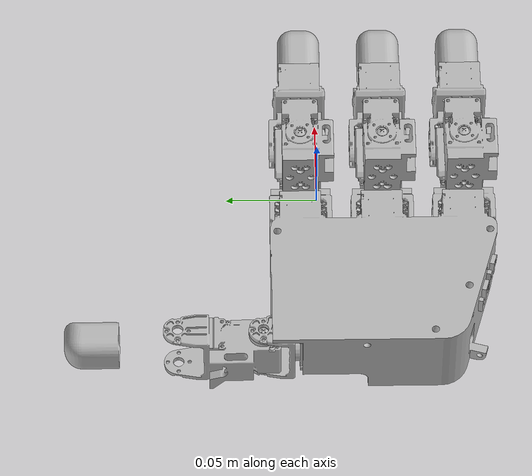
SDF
<sdf version='1.9'>
  <model name='leap_hand_right'>
    <link name='palm_lower'>
      <inertial>
        <pose>0 0 0 0 0 0</pose>
        <mass>0.23699999999999999</mass>
        <inertia>
          <ixx>0.000354094</ixx>
          <ixy>-1.1930000000000001e-06</ixy>
          <ixz>-2.4449999999999999e-06</ixz>
          <iyy>0.00026091500000000002</iyy>
          <iyz>-2.9050000000000001e-06</iyz>
          <izz>0.00052925699999999999</izz>
        </inertia>
      </inertial>
      <collision name='palm_lower_collision'>
        <pose>-0.008999999999999999 0.008 -0.011 0 0 0</pose>
        <geometry>
          <box>
            <size>0.022 0.026 0.034</size>
          </box>
        </geometry>
      </collision>
      <collision name='palm_lower_collision_1'>
        <pose>-0.008999999999999999 -0.037 -0.011 0 0 0</pose>
        <geometry>
          <box>
            <size>0.022 0.026 0.034</size>
          </box>
        </geometry>
      </collision>
      <collision name='palm_lower_collision_2'>
        <pose>-0.008999999999999999 -0.082 -0.011 0 0 0</pose>
        <geometry>
          <box>
            <size>0.022 0.026 0.034</size>
          </box>
        </geometry>
      </collision>
      <collision name='palm_lower_collision_3'>
        <pose>-0.066 -0.078 -0.0115 0 0 -0.2967</pose>
        <geometry>
          <box>
            <size>0.058 0.02 0.046</size>
          </box>
        </geometry>
      </collision>
      <collision name='palm_lower_collision_4'>
        <pose>-0.03 -0.035 -0.003 0 0 0</pose>
        <geometry>
          <box>
            <size>0.02 0.12 0.03</size>
          </box>
        </geometry>
      </collision>
      <collision name='palm_lower_collision_5'>
        <pose>-0.032 -0.035 -0.024 0 0.7850000000000003 0</pose>
        <geometry>
          <box>
            <size>0.01 0.12 0.02</size>
          </box>
        </geometry>
      </collision>
      <collision name='palm_lower_collision_6'>
        <pose>-0.048 -0.033 -0.0115 0 0 0</pose>
        <geometry>
          <box>
            <size>0.024 0.116 0.046</size>
          </box>
        </geometry>
      </collision>
      <collision name='palm_lower_collision_7'>
        <pose>-0.078 -0.053 -0.0115 0 0 0</pose>
        <geometry>
          <box>
            <size>0.044 0.052 0.046</size>
          </box>
        </geometry>
      </collision>
      <collision name='palm_lower_collision_8'>
        <pose>-0.098 -0.008999999999999999 -0.006 0 0 0</pose>
        <geometry>
          <box>
            <size>0.004 0.036 0.034</size>
          </box>
        </geometry>
      </collision>
      <collision name='palm_lower_collision_9'>
        <pose>-0.078 -0.003 0.01 0 0 0</pose>
        <geometry>
          <box>
            <size>0.044 0.056 0.004</size>
          </box>
        </geometry>
      </collision>
      <visual name='palm_lower_visual'>
        <pose>-0.02 0.02575 -0.0347 0 0 0</pose>
        <geometry>
          <mesh>
            <scale>1 1 1</scale>
            <uri>meshes/visual/dae_files/palm_lower.dae</uri>
          </mesh>
        </geometry>
      </visual>
    </link>
    <joint name='index_1' type='revolute'>
      <pose relative_to='palm_lower'>-0.007 0.023 -0.0187 1.570789999998722 1.570790000027876 0</pose>
      <parent>palm_lower</parent>
      <child>mcp_joint</child>
      <axis>
        <xyz>0 0 -1</xyz>
        <limit>
          <lower>-0.314</lower>
          <upper>2.23</upper>
          <effort>0.94999999999999996</effort>
          <velocity>8.4800000000000004</velocity>
        </limit>
        <dynamics>
          <spring_reference>0</spring_reference>
          <spring_stiffness>0</spring_stiffness>
        </dynamics>
      </axis>
    </joint>
    <link name='mcp_joint'>
      <pose relative_to='index_1'>0 0 0 0 0 0</pose>
      <inertial>
        <pose>0 0 0 0 0 0</pose>
        <mass>0.043999999999999997</mass>
        <inertia>
          <ixx>1.1499e-05</ixx>
          <ixy>3.0489999999999999e-06</ixy>
          <ixz>1.2100000000000001e-07</ixz>
          <iyy>7.7959999999999996e-06</iyy>
          <iyz>1.12e-07</iyz>
          <izz>1.4759e-05</izz>
        </inertia>
      </inertial>
      <collision name='mcp_joint_collision'>
        <pose>0 0.018 0.0147 0 0 0</pose>
        <geometry>
          <box>
            <size>0.02 0.006 0.034</size>
          </box>
        </geometry>
      </collision>
      <collision name='mcp_joint_collision_1'>
        <pose>-0.027 0.042 0.015 0 0 0</pose>
        <geometry>
          <box>
            <size>0.028 0.04 0.02</size>
          </box>
        </geometry>
      </collision>
      <collision name='mcp_joint_collision_2'>
        <pose>-0.0262 0.02 0.0146 0 0 0</pose>
        <geometry>
          <box>
            <size>0.034 0.006 0.02</size>
          </box>
        </geometry>
      </collision>
      <collision name='mcp_joint_collision_3'>
        <pose>-0.0295 0.035 0.029 0 0 0</pose>
        <geometry>
          <box>
            <size>0.02 0.024 0.008</size>
          </box>
        </geometry>
      </collision>
      <collision name='mcp_joint_collision_4'>
        <pose>0 0.005 0.03 0 0 0</pose>
        <geometry>
          <box>
            <size>0.014 0.02 0.004</size>
          </box>
        </geometry>
      </collision>
      <collision name='mcp_joint_collision_5'>
        <pose>0 0.005 -0.001 0 0 0</pose>
        <geometry>
          <box>
            <size>0.014 0.02 0.004</size>
          </box>
        </geometry>
      </collision>
      <visual name='mcp_joint_visual'>
        <pose>0.008399999999999999 0.0077 0.01465 0 0 0</pose>
        <geometry>
          <mesh>
            <scale>1 1 1</scale>
            <uri>meshes/visual/dae_files/mcp_joint.dae</uri>
          </mesh>
        </geometry>
      </visual>
    </link>
    <joint name='index_0' type='revolute'>
      <pose relative_to='mcp_joint'>-0.0122 0.0381 0.0145 -1.57079 0 1.57079</pose>
      <parent>mcp_joint</parent>
      <child>pip</child>
      <axis>
        <xyz>0 0 -1</xyz>
        <limit>
          <lower>-1.0469999999999999</lower>
          <upper>1.0469999999999999</upper>
          <effort>0.94999999999999996</effort>
          <velocity>8.4800000000000004</velocity>
        </limit>
        <dynamics>
          <spring_reference>0</spring_reference>
          <spring_stiffness>0</spring_stiffness>
        </dynamics>
      </axis>
    </joint>
    <link name='pip'>
      <pose relative_to='index_0'>0 0 0 0 0 0</pose>
      <inertial>
        <pose>0 0 0 0 0 0</pose>
        <mass>0.032000000000000001</mass>
        <inertia>
          <ixx>4.7979999999999996e-06</ixx>
          <ixy>1.2e-08</ixy>
          <ixz>4.0000000000000002e-09</ixz>
          <iyy>2.8619999999999999e-06</iyy>
          <iyz>1.0999999999999999e-08</iyz>
          <izz>4.2339999999999996e-06</izz>
        </inertia>
      </inertial>
      <collision name='pip_collision'>
        <pose>0.0075 -0.0002 -0.011 0 0 0</pose>
        <geometry>
          <box>
            <size>0.034 0.026 0.022</size>
          </box>
        </geometry>
      </collision>
      <visual name='pip_visual'>
        <pose>0.009599999999999999 0.0002 0.0007 0 -1.570796326794897 -1.570796326794897</pose>
        <geometry>
          <mesh>
            <scale>1 1 1</scale>
            <uri>meshes/visual/dae_files/pip.dae</uri>
          </mesh>
        </geometry>
      </visual>
    </link>
    <joint name='index_2' type='revolute'>
      <pose relative_to='pip'>0.015 0.0143 -0.013 1.570789999998722 -1.570790000027876 0</pose>
      <parent>pip</parent>
      <child>dip</child>
      <axis>
        <xyz>0 0 -1</xyz>
        <limit>
          <lower>-0.50600000000000001</lower>
          <upper>1.885</upper>
          <effort>0.94999999999999996</effort>
          <velocity>8.4800000000000004</velocity>
        </limit>
        <dynamics>
          <spring_reference>0</spring_reference>
          <spring_stiffness>0</spring_stiffness>
        </dynamics>
      </axis>
    </joint>
    <link name='dip'>
      <pose relative_to='index_2'>0 0 0 0 0 0</pose>
      <inertial>
        <pose>0 0 0 0 0 0</pose>
        <mass>0.036999999999999998</mass>
        <inertia>
          <ixx>5.5419999999999996e-06</ixx>
          <ixy>-6.0699999999999997e-07</ixy>
          <ixz>-1.7e-08</ixz>
          <iyy>5.7270000000000004e-06</iyy>
          <iyz>-2.3000000000000001e-08</iyz>
          <izz>6.6819999999999997e-06</izz>
        </inertia>
      </inertial>
      <collision name='dip_collision'>
        <pose>0 -0.02 0.015 0 0 0</pose>
        <geometry>
          <box>
            <size>0.016 0.006 0.026</size>
          </box>
        </geometry>
      </collision>
      <collision name='dip_collision_1'>
        <pose>0 -0.016 0.015 0 0 0</pose>
        <geometry>
          <box>
            <size>0.02 0.004 0.034</size>
          </box>
        </geometry>
      </collision>
      <collision name='dip_collision_2'>
        <pose>0 -0.0045 0.03 0 0 0</pose>
        <geometry>
          <box>
            <size>0.014 0.02 0.004</size>
          </box>
        </geometry>
      </collision>
      <collision name='dip_collision_3'>
        <pose>0 -0.0045 0 0 0 0</pose>
        <geometry>
          <box>
            <size>0.014 0.02 0.004</size>
          </box>
        </geometry>
      </collision>
      <collision name='dip_collision_4'>
        <pose>0.0075 -0.035 0.015 0 0 0</pose>
        <geometry>
          <box>
            <size>0.034 0.022 0.026</size>
          </box>
        </geometry>
      </collision>
      <visual name='dip_visual'>
        <pose>0.0211 -0.008399999999999999 0.0097 -3.1415926 0 0</pose>
        <geometry>
          <mesh>
            <scale>1 1 1</scale>
            <uri>meshes/visual/dae_files/dip.dae</uri>
          </mesh>
        </geometry>
      </visual>
    </link>
    <joint name='index_3' type='revolute'>
      <pose relative_to='dip'>0 -0.0361 0.0002 0 0 0</pose>
      <parent>dip</parent>
      <child>fingertip</child>
      <axis>
        <xyz>0 0 -1</xyz>
        <limit>
          <lower>-0.36599999999999999</lower>
          <upper>2.0419999999999998</upper>
          <effort>0.94999999999999996</effort>
          <velocity>8.4800000000000004</velocity>
        </limit>
        <dynamics>
          <spring_reference>0</spring_reference>
          <spring_stiffness>0</spring_stiffness>
        </dynamics>
      </axis>
    </joint>
    <link name='fingertip'>
      <pose relative_to='index_3'>0 0 0 0 0 0</pose>
      <inertial>
        <pose>0 0 0 0 0 0</pose>
        <mass>0.016</mass>
        <inertia>
          <ixx>3.3680000000000002e-06</ixx>
          <ixy>1.15e-07</ixy>
          <ixz>0</ixz>
          <iyy>1.556e-06</iyy>
          <iyz>0</iyz>
          <izz>2.8629999999999999e-06</izz>
        </inertia>
      </inertial>
      <collision name='fingertip_collision'>
        <pose>0 -0.017 0.015 0 0 0</pose>
        <geometry>
          <box>
            <size>0.02 0.006 0.03</size>
          </box>
        </geometry>
      </collision>
      <collision name='fingertip_collision_1'>
        <pose>0 -0.006 0.03 0 0 0</pose>
        <geometry>
          <box>
            <size>0.014 0.022 0.004</size>
          </box>
        </geometry>
      </collision>
      <collision name='fingertip_collision_2'>
        <pose>0 -0.006 -0.001 0 0 0</pose>
        <geometry>
          <box>
            <size>0.014 0.022 0.004</size>
          </box>
        </geometry>
      </collision>
      <collision name='fingertip_collision_3'>
        <pose>0 0 0 0 0 0</pose>
        <geometry>
          <mesh>
            <scale>1 1 1</scale>
            <uri>meshes/collision/dae_files/white_tip.dae</uri>
          </mesh>
        </geometry>
      </collision>
      <visual name='fingertip_visual'>
        <pose>0.0132 -0.0061 0.0144 3.1415926 0 0</pose>
        <geometry>
          <mesh>
            <scale>1 1 1</scale>
            <uri>meshes/visual/dae_files/fingertip.dae</uri>
          </mesh>
        </geometry>
      </visual>
    </link>
    <joint name='middle_1' type='revolute'>
      <pose relative_to='palm_lower'>-0.0071 -0.0224 -0.0187 1.570789999998722 1.570790000027876 0</pose>
      <parent>palm_lower</parent>
      <child>mcp_joint_2</child>
      <axis>
        <xyz>0 0 -1</xyz>
        <limit>
          <lower>-0.314</lower>
          <upper>2.23</upper>
          <effort>0.94999999999999996</effort>
          <velocity>8.4800000000000004</velocity>
        </limit>
        <dynamics>
          <spring_reference>0</spring_reference>
          <spring_stiffness>0</spring_stiffness>
        </dynamics>
      </axis>
    </joint>
    <link name='mcp_joint_2'>
      <pose relative_to='middle_1'>0 0 0 0 0 0</pose>
      <inertial>
        <pose>0 0 0 0 0 0</pose>
        <mass>0.043999999999999997</mass>
        <inertia>
          <ixx>1.1499e-05</ixx>
          <ixy>3.0489999999999999e-06</ixy>
          <ixz>1.2100000000000001e-07</ixz>
          <iyy>7.7959999999999996e-06</iyy>
          <iyz>1.12e-07</iyz>
          <izz>1.4759e-05</izz>
        </inertia>
      </inertial>
      <collision name='mcp_joint_2_collision'>
        <pose>0 0.018 0.0147 0 0 0</pose>
        <geometry>
          <box>
            <size>0.02 0.006 0.034</size>
          </box>
        </geometry>
      </collision>
      <collision name='mcp_joint_2_collision_1'>
        <pose>-0.027 0.042 0.015 0 0 0</pose>
        <geometry>
          <box>
            <size>0.028 0.04 0.02</size>
          </box>
        </geometry>
      </collision>
      <collision name='mcp_joint_2_collision_2'>
        <pose>-0.0262 0.02 0.0146 0 0 0</pose>
        <geometry>
          <box>
            <size>0.034 0.006 0.02</size>
          </box>
        </geometry>
      </collision>
      <collision name='mcp_joint_2_collision_3'>
        <pose>-0.0295 0.035 0.029 0 0 0</pose>
        <geometry>
          <box>
            <size>0.02 0.024 0.008</size>
          </box>
        </geometry>
      </collision>
      <collision name='mcp_joint_2_collision_4'>
        <pose>0 0.005 0.03 0 0 0</pose>
        <geometry>
          <box>
            <size>0.014 0.02 0.004</size>
          </box>
        </geometry>
      </collision>
      <collision name='mcp_joint_2_collision_5'>
        <pose>0 0.005 -0.001 0 0 0</pose>
        <geometry>
          <box>
            <size>0.014 0.02 0.004</size>
          </box>
        </geometry>
      </collision>
      <visual name='mcp_joint_2_visual'>
        <pose>0.008399999999999999 0.0077 0.01465 0 0 0</pose>
        <geometry>
          <mesh>
            <scale>1 1 1</scale>
            <uri>meshes/visual/dae_files/mcp_joint.dae</uri>
          </mesh>
        </geometry>
      </visual>
    </link>
    <joint name='middle_0' type='revolute'>
      <pose relative_to='mcp_joint_2'>-0.0122 0.0381 0.0145 -1.57079 0 1.57079</pose>
      <parent>mcp_joint_2</parent>
      <child>pip_2</child>
      <axis>
        <xyz>0 0 -1</xyz>
        <limit>
          <lower>-1.0469999999999999</lower>
          <upper>1.0469999999999999</upper>
          <effort>0.94999999999999996</effort>
          <velocity>8.4800000000000004</velocity>
        </limit>
        <dynamics>
          <spring_reference>0</spring_reference>
          <spring_stiffness>0</spring_stiffness>
        </dynamics>
      </axis>
    </joint>
    <link name='pip_2'>
      <pose relative_to='middle_0'>0 0 0 0 0 0</pose>
      <inertial>
        <pose>0 0 0 0 0 0</pose>
        <mass>0.032000000000000001</mass>
        <inertia>
          <ixx>4.7979999999999996e-06</ixx>
          <ixy>1.2e-08</ixy>
          <ixz>4.0000000000000002e-09</ixz>
          <iyy>2.8619999999999999e-06</iyy>
          <iyz>1.0999999999999999e-08</iyz>
          <izz>4.2339999999999996e-06</izz>
        </inertia>
      </inertial>
      <collision name='pip_2_collision'>
        <pose>0.0075 -0.0002 -0.011 0 0 0</pose>
        <geometry>
          <box>
            <size>0.034 0.026 0.022</size>
          </box>
        </geometry>
      </collision>
      <visual name='pip_2_visual'>
        <pose>0.009599999999999999 0.0003 0.0007 0 -1.570796326794897 -1.570796326794897</pose>
        <geometry>
          <mesh>
            <scale>1 1 1</scale>
            <uri>meshes/visual/dae_files/pip.dae</uri>
          </mesh>
        </geometry>
      </visual>
    </link>
    <joint name='middle_2' type='revolute'>
      <pose relative_to='pip_2'>0.015 0.0143 -0.013 1.570789999998722 -1.570790000027876 0</pose>
      <parent>pip_2</parent>
      <child>dip_2</child>
      <axis>
        <xyz>0 0 -1</xyz>
        <limit>
          <lower>-0.50600000000000001</lower>
          <upper>1.885</upper>
          <effort>0.94999999999999996</effort>
          <velocity>8.4800000000000004</velocity>
        </limit>
        <dynamics>
          <spring_reference>0</spring_reference>
          <spring_stiffness>0</spring_stiffness>
        </dynamics>
      </axis>
    </joint>
    <link name='dip_2'>
      <pose relative_to='middle_2'>0 0 0 0 0 0</pose>
      <inertial>
        <pose>0 0 0 0 0 0</pose>
        <mass>0.036999999999999998</mass>
        <inertia>
          <ixx>5.5419999999999996e-06</ixx>
          <ixy>-6.0699999999999997e-07</ixy>
          <ixz>-1.7e-08</ixz>
          <iyy>5.7270000000000004e-06</iyy>
          <iyz>-2.3000000000000001e-08</iyz>
          <izz>6.6819999999999997e-06</izz>
        </inertia>
      </inertial>
      <collision name='dip_2_collision'>
        <pose>0 -0.02 0.015 0 0 0</pose>
        <geometry>
          <box>
            <size>0.016 0.006 0.026</size>
          </box>
        </geometry>
      </collision>
      <collision name='dip_2_collision_1'>
        <pose>0 -0.016 0.015 0 0 0</pose>
        <geometry>
          <box>
            <size>0.02 0.004 0.034</size>
          </box>
        </geometry>
      </collision>
      <collision name='dip_2_collision_2'>
        <pose>0 -0.0045 0.03 0 0 0</pose>
        <geometry>
          <box>
            <size>0.014 0.02 0.004</size>
          </box>
        </geometry>
      </collision>
      <collision name='dip_2_collision_3'>
        <pose>0 -0.0045 0 0 0 0</pose>
        <geometry>
          <box>
            <size>0.014 0.02 0.004</size>
          </box>
        </geometry>
      </collision>
      <collision name='dip_2_collision_4'>
        <pose>0.0075 -0.035 0.015 0 0 0</pose>
        <geometry>
          <box>
            <size>0.034 0.022 0.026</size>
          </box>
        </geometry>
      </collision>
      <visual name='dip_2_visual'>
        <pose>0.0211 -0.008399999999999999 0.0097 -3.14159 0 0</pose>
        <geometry>
          <mesh>
            <scale>1 1 1</scale>
            <uri>meshes/visual/dae_files/dip.dae</uri>
          </mesh>
        </geometry>
      </visual>
    </link>
    <joint name='middle_3' type='revolute'>
      <pose relative_to='dip_2'>0 -0.0361 0.0002 0 0 0</pose>
      <parent>dip_2</parent>
      <child>fingertip_2</child>
      <axis>
        <xyz>0 0 -1</xyz>
        <limit>
          <lower>-0.36599999999999999</lower>
          <upper>2.0419999999999998</upper>
          <effort>0.94999999999999996</effort>
          <velocity>8.4800000000000004</velocity>
        </limit>
        <dynamics>
          <spring_reference>0</spring_reference>
          <spring_stiffness>0</spring_stiffness>
        </dynamics>
      </axis>
    </joint>
    <link name='fingertip_2'>
      <pose relative_to='middle_3'>0 0 0 0 0 0</pose>
      <inertial>
        <pose>0 0 0 0 0 0</pose>
        <mass>0.016</mass>
        <inertia>
          <ixx>3.3680000000000002e-06</ixx>
          <ixy>1.15e-07</ixy>
          <ixz>0</ixz>
          <iyy>1.556e-06</iyy>
          <iyz>0</iyz>
          <izz>2.8629999999999999e-06</izz>
        </inertia>
      </inertial>
      <collision name='fingertip_2_collision'>
        <pose>0 -0.017 0.015 0 0 0</pose>
        <geometry>
          <box>
            <size>0.02 0.006 0.03</size>
          </box>
        </geometry>
      </collision>
      <collision name='fingertip_2_collision_1'>
        <pose>0 -0.006 0.03 0 0 0</pose>
        <geometry>
          <box>
            <size>0.014 0.022 0.004</size>
          </box>
        </geometry>
      </collision>
      <collision name='fingertip_2_collision_2'>
        <pose>0 -0.006 -0.001 0 0 0</pose>
        <geometry>
          <box>
            <size>0.014 0.022 0.004</size>
          </box>
        </geometry>
      </collision>
      <collision name='fingertip_2_collision_3'>
        <pose>0 0 0 0 0 0</pose>
        <geometry>
          <mesh>
            <scale>1 1 1</scale>
            <uri>meshes/collision/dae_files/white_tip.dae</uri>
          </mesh>
        </geometry>
      </collision>
      <visual name='fingertip_2_visual'>
        <pose>0.0132 -0.0061 0.0145 3.14159 0 0</pose>
        <geometry>
          <mesh>
            <scale>1 1 1</scale>
            <uri>meshes/visual/dae_files/fingertip.dae</uri>
          </mesh>
        </geometry>
      </visual>
    </link>
    <joint name='ring_1' type='revolute'>
      <pose relative_to='palm_lower'>-0.00709 -0.0678 -0.0187 1.570789999998722 1.570790000027876 0</pose>
      <parent>palm_lower</parent>
      <child>mcp_joint_3</child>
      <axis>
        <xyz>0 0 -1</xyz>
        <limit>
          <lower>-0.314</lower>
          <upper>2.23</upper>
          <effort>0.94999999999999996</effort>
          <velocity>8.4800000000000004</velocity>
        </limit>
        <dynamics>
          <spring_reference>0</spring_reference>
          <spring_stiffness>0</spring_stiffness>
        </dynamics>
      </axis>
    </joint>
    <link name='mcp_joint_3'>
      <pose relative_to='ring_1'>0 0 0 0 0 0</pose>
      <inertial>
        <pose>0 0 0 0 0 0</pose>
        <mass>0.043999999999999997</mass>
        <inertia>
          <ixx>1.1499e-05</ixx>
          <ixy>3.0489999999999999e-06</ixy>
          <ixz>1.2100000000000001e-07</ixz>
          <iyy>7.7959999999999996e-06</iyy>
          <iyz>1.12e-07</iyz>
          <izz>1.4759e-05</izz>
        </inertia>
      </inertial>
      <collision name='mcp_joint_3_collision'>
        <pose>0 0.018 0.0147 0 0 0</pose>
        <geometry>
          <box>
            <size>0.02 0.006 0.034</size>
          </box>
        </geometry>
      </collision>
      <collision name='mcp_joint_3_collision_1'>
        <pose>-0.027 0.042 0.015 0 0 0</pose>
        <geometry>
          <box>
            <size>0.028 0.04 0.02</size>
          </box>
        </geometry>
      </collision>
      <collision name='mcp_joint_3_collision_2'>
        <pose>-0.0262 0.02 0.0146 0 0 0</pose>
        <geometry>
          <box>
            <size>0.034 0.006 0.02</size>
          </box>
        </geometry>
      </collision>
      <collision name='mcp_joint_3_collision_3'>
        <pose>-0.0295 0.035 0.029 0 0 0</pose>
        <geometry>
          <box>
            <size>0.02 0.024 0.008</size>
          </box>
        </geometry>
      </collision>
      <collision name='mcp_joint_3_collision_4'>
        <pose>0 0.005 0.03 0 0 0</pose>
        <geometry>
          <box>
            <size>0.014 0.02 0.004</size>
          </box>
        </geometry>
      </collision>
      <collision name='mcp_joint_3_collision_5'>
        <pose>0 0.005 -0.001 0 0 0</pose>
        <geometry>
          <box>
            <size>0.014 0.02 0.004</size>
          </box>
        </geometry>
      </collision>
      <visual name='mcp_joint_3_visual'>
        <pose>0.008399999999999999 0.0077 0.01465 0 0 0</pose>
        <geometry>
          <mesh>
            <scale>1 1 1</scale>
            <uri>meshes/visual/dae_files/mcp_joint.dae</uri>
          </mesh>
        </geometry>
      </visual>
    </link>
    <joint name='ring_0' type='revolute'>
      <pose relative_to='mcp_joint_3'>-0.0122 0.0381 0.0145 -1.57079 0 1.57079</pose>
      <parent>mcp_joint_3</parent>
      <child>pip_3</child>
      <axis>
        <xyz>0 0 -1</xyz>
        <limit>
          <lower>-1.0469999999999999</lower>
          <upper>1.0469999999999999</upper>
          <effort>0.94999999999999996</effort>
          <velocity>8.4800000000000004</velocity>
        </limit>
        <dynamics>
          <spring_reference>0</spring_reference>
          <spring_stiffness>0</spring_stiffness>
        </dynamics>
      </axis>
    </joint>
    <link name='pip_3'>
      <pose relative_to='ring_0'>0 0 0 0 0 0</pose>
      <inertial>
        <pose>0 0 0 0 0 0</pose>
        <mass>0.032000000000000001</mass>
        <inertia>
          <ixx>4.7979999999999996e-06</ixx>
          <ixy>1.2e-08</ixy>
          <ixz>4.0000000000000002e-09</ixz>
          <iyy>2.8619999999999999e-06</iyy>
          <iyz>1.0999999999999999e-08</iyz>
          <izz>4.2339999999999996e-06</izz>
        </inertia>
      </inertial>
      <collision name='pip_3_collision'>
        <pose>0.0075 -0.0002 -0.011 0 0 0</pose>
        <geometry>
          <box>
            <size>0.034 0.026 0.022</size>
          </box>
        </geometry>
      </collision>
      <visual name='pip_3_visual'>
        <pose>0.009599999999999999 0.0003 0.0007 0 -1.570796326794897 -1.570796326794897</pose>
        <geometry>
          <mesh>
            <scale>1 1 1</scale>
            <uri>meshes/visual/dae_files/pip.dae</uri>
          </mesh>
        </geometry>
      </visual>
    </link>
    <joint name='ring_2' type='revolute'>
      <pose relative_to='pip_3'>0.015 0.0143 -0.013 1.570789999998722 -1.570790000027876 0</pose>
      <parent>pip_3</parent>
      <child>dip_3</child>
      <axis>
        <xyz>0 0 -1</xyz>
        <limit>
          <lower>-0.50600000000000001</lower>
          <upper>1.885</upper>
          <effort>0.94999999999999996</effort>
          <velocity>8.4800000000000004</velocity>
        </limit>
        <dynamics>
          <spring_reference>0</spring_reference>
          <spring_stiffness>0</spring_stiffness>
        </dynamics>
      </axis>
    </joint>
    <link name='dip_3'>
      <pose relative_to='ring_2'>0 0 0 0 0 0</pose>
      <inertial>
        <pose>0 0 0 0 0 0</pose>
        <mass>0.036999999999999998</mass>
        <inertia>
          <ixx>5.5419999999999996e-06</ixx>
          <ixy>-6.0699999999999997e-07</ixy>
          <ixz>-1.7e-08</ixz>
          <iyy>5.7270000000000004e-06</iyy>
          <iyz>-2.3000000000000001e-08</iyz>
          <izz>6.6819999999999997e-06</izz>
        </inertia>
      </inertial>
      <collision name='dip_3_collision'>
        <pose>0 -0.02 0.015 0 0 0</pose>
        <geometry>
          <box>
            <size>0.016 0.006 0.026</size>
          </box>
        </geometry>
      </collision>
      <collision name='dip_3_collision_1'>
        <pose>0 -0.016 0.015 0 0 0</pose>
        <geometry>
          <box>
            <size>0.02 0.004 0.034</size>
          </box>
        </geometry>
      </collision>
      <collision name='dip_3_collision_2'>
        <pose>0 -0.0045 0.03 0 0 0</pose>
        <geometry>
          <box>
            <size>0.014 0.02 0.004</size>
          </box>
        </geometry>
      </collision>
      <collision name='dip_3_collision_3'>
        <pose>0 -0.0045 0 0 0 0</pose>
        <geometry>
          <box>
            <size>0.014 0.02 0.004</size>
          </box>
        </geometry>
      </collision>
      <collision name='dip_3_collision_4'>
        <pose>0.0075 -0.035 0.015 0 0 0</pose>
        <geometry>
          <box>
            <size>0.034 0.022 0.026</size>
          </box>
        </geometry>
      </collision>
      <visual name='dip_3_visual'>
        <pose>0.0211 -0.008399999999999999 0.0097 -3.14159 0 0</pose>
        <geometry>
          <mesh>
            <scale>1 1 1</scale>
            <uri>meshes/visual/dae_files/dip.dae</uri>
          </mesh>
        </geometry>
      </visual>
    </link>
    <joint name='ring_3' type='revolute'>
      <pose relative_to='dip_3'>0 -0.03609 0.0002 0 0 0</pose>
      <parent>dip_3</parent>
      <child>fingertip_3</child>
      <axis>
        <xyz>0 0 -1</xyz>
        <limit>
          <lower>-0.36599999999999999</lower>
          <upper>2.0419999999999998</upper>
          <effort>0.94999999999999996</effort>
          <velocity>8.4800000000000004</velocity>
        </limit>
        <dynamics>
          <spring_reference>0</spring_reference>
          <spring_stiffness>0</spring_stiffness>
        </dynamics>
      </axis>
    </joint>
    <link name='fingertip_3'>
      <pose relative_to='ring_3'>0 0 0 0 0 0</pose>
      <inertial>
        <pose>0 0 0 0 0 0</pose>
        <mass>0.016</mass>
        <inertia>
          <ixx>3.3680000000000002e-06</ixx>
          <ixy>1.15e-07</ixy>
          <ixz>0</ixz>
          <iyy>1.556e-06</iyy>
          <iyz>0</iyz>
          <izz>2.8629999999999999e-06</izz>
        </inertia>
      </inertial>
      <collision name='fingertip_3_collision'>
        <pose>0 -0.017 0.015 0 0 0</pose>
        <geometry>
          <box>
            <size>0.02 0.006 0.03</size>
          </box>
        </geometry>
      </collision>
      <collision name='fingertip_3_collision_1'>
        <pose>0 -0.006 0.03 0 0 0</pose>
        <geometry>
          <box>
            <size>0.014 0.022 0.004</size>
          </box>
        </geometry>
      </collision>
      <collision name='fingertip_3_collision_2'>
        <pose>0 -0.006 -0.001 0 0 0</pose>
        <geometry>
          <box>
            <size>0.014 0.022 0.004</size>
          </box>
        </geometry>
      </collision>
      <collision name='fingertip_3_collision_3'>
        <pose>0 0 0 0 0 0</pose>
        <geometry>
          <mesh>
            <scale>1 1 1</scale>
            <uri>meshes/collision/dae_files/white_tip.dae</uri>
          </mesh>
        </geometry>
      </collision>
      <visual name='fingertip_3_visual'>
        <pose>0.0132 -0.0061 0.0145 3.14159 0 0</pose>
        <geometry>
          <mesh>
            <scale>1 1 1</scale>
            <uri>meshes/visual/dae_files/fingertip.dae</uri>
          </mesh>
        </geometry>
      </visual>
    </link>
    <joint name='thumb_0' type='revolute'>
      <pose relative_to='palm_lower'>-0.0693 -0.0012 -0.0216 0 1.570790000045424 0</pose>
      <parent>palm_lower</parent>
      <child>thumb_temp_base</child>
      <axis>
        <xyz>0 0 -1</xyz>
        <limit>
          <lower>-0.34899999999999998</lower>
          <upper>2.0939999999999999</upper>
          <effort>0.94999999999999996</effort>
          <velocity>8.4800000000000004</velocity>
        </limit>
        <dynamics>
          <spring_reference>0</spring_reference>
          <spring_stiffness>0</spring_stiffness>
        </dynamics>
      </axis>
    </joint>
    <link name='thumb_temp_base'>
      <pose relative_to='thumb_0'>0 0 0 0 0 0</pose>
      <inertial>
        <pose>0 0 0 0 0 0</pose>
        <mass>0.032000000000000001</mass>
        <inertia>
          <ixx>4.7979999999999996e-06</ixx>
          <ixy>1.2e-08</ixy>
          <ixz>4.0000000000000002e-09</ixz>
          <iyy>2.8619999999999999e-06</iyy>
          <iyz>1.0999999999999999e-08</iyz>
          <izz>4.2339999999999996e-06</izz>
        </inertia>
      </inertial>
      <collision name='thumb_temp_base_collision'>
        <pose>0.0075 -0.0002 -0.011 0 0 0</pose>
        <geometry>
          <box>
            <size>0.034 0.026 0.022</size>
          </box>
        </geometry>
      </collision>
      <visual name='thumb_temp_base_visual'>
        <pose>-0.0053 0.0003 0.00078 0 -1.570796326794897 -1.570796326794897</pose>
        <geometry>
          <mesh>
            <scale>1 1 1</scale>
            <uri>meshes/visual/dae_files/pip.dae</uri>
          </mesh>
        </geometry>
      </visual>
    </link>
    <joint name='thumb_1' type='revolute'>
      <pose relative_to='thumb_temp_base'>0 0.0143 -0.013 1.570789999998722 -1.570790000027876 0</pose>
      <parent>thumb_temp_base</parent>
      <child>thumb_pip</child>
      <axis>
        <xyz>0 0 -1</xyz>
        <limit>
          <lower>-0.46999999999999997</lower>
          <upper>2.4430000000000001</upper>
          <effort>0.94999999999999996</effort>
          <velocity>8.4800000000000004</velocity>
        </limit>
        <dynamics>
          <spring_reference>0</spring_reference>
          <spring_stiffness>0</spring_stiffness>
        </dynamics>
      </axis>
    </joint>
    <link name='thumb_pip'>
      <pose relative_to='thumb_1'>0 0 0 0 0 0</pose>
      <inertial>
        <pose>0 0 0 0 0 0</pose>
        <mass>0.0030000000000000001</mass>
        <inertia>
          <ixx>5.9299999999999998e-07</ixx>
          <ixy>0</ixy>
          <ixz>0</ixz>
          <iyy>5.4899999999999995e-07</iyy>
          <iyz>0</iyz>
          <izz>2.2399999999999999e-07</izz>
        </inertia>
      </inertial>
      <collision name='thumb_pip_collision'>
        <pose>0 0 -0.0015 0 0 0</pose>
        <geometry>
          <box>
            <size>0.018 0.033 0.004</size>
          </box>
        </geometry>
      </collision>
      <collision name='thumb_pip_collision_1'>
        <pose>0 -0.015 -0.013 0 0 0</pose>
        <geometry>
          <box>
            <size>0.014 0.004 0.02</size>
          </box>
        </geometry>
      </collision>
      <collision name='thumb_pip_collision_2'>
        <pose>0 0.015 -0.013 0 0 0</pose>
        <geometry>
          <box>
            <size>0.014 0.004 0.02</size>
          </box>
        </geometry>
      </collision>
      <visual name='thumb_pip_visual'>
        <pose>0.01196 0 -0.0158 1.57079 0 0</pose>
        <geometry>
          <mesh>
            <scale>1 1 1</scale>
            <uri>meshes/visual/dae_files/thumb_pip.dae</uri>
          </mesh>
        </geometry>
      </visual>
    </link>
    <joint name='thumb_2' type='revolute'>
      <pose relative_to='thumb_pip'>0 0.0145 -0.017 -1.57079 0 0</pose>
      <parent>thumb_pip</parent>
      <child>thumb_dip</child>
      <axis>
        <xyz>0 0 -1</xyz>
        <limit>
          <lower>-1.2</lower>
          <upper>1.8999999999999999</upper>
          <effort>0.94999999999999996</effort>
          <velocity>8.4800000000000004</velocity>
        </limit>
        <dynamics>
          <spring_reference>0</spring_reference>
          <spring_stiffness>0</spring_stiffness>
        </dynamics>
      </axis>
    </joint>
    <link name='thumb_dip'>
      <pose relative_to='thumb_2'>0 0 0 0 0 0</pose>
      <inertial>
        <pose>0 0 0 0 0 0</pose>
        <mass>0.037999999999999999</mass>
        <inertia>
          <ixx>8.4740000000000005e-06</ixx>
          <ixy>2.41e-07</ixy>
          <ixz>2.6000000000000001e-08</ixz>
          <iyy>3.8410000000000002e-06</iyy>
          <iyz>2.4999999999999999e-08</iyz>
          <izz>7.6790000000000005e-06</izz>
        </inertia>
      </inertial>
      <collision name='thumb_dip_collision'>
        <pose>0 0.0105 -0.014 0 0 0</pose>
        <geometry>
          <box>
            <size>0.02 0.04 0.024</size>
          </box>
        </geometry>
      </collision>
      <collision name='thumb_dip_collision_1'>
        <pose>0 0.031 -0.015 0 0 0</pose>
        <geometry>
          <box>
            <size>0.02 0.004 0.032</size>
          </box>
        </geometry>
      </collision>
      <collision name='thumb_dip_collision_2'>
        <pose>0 0.042 0.001 0 0 0</pose>
        <geometry>
          <box>
            <size>0.014 0.02 0.004</size>
          </box>
        </geometry>
      </collision>
      <collision name='thumb_dip_collision_3'>
        <pose>0 0.042 -0.029 0 0 0</pose>
        <geometry>
          <box>
            <size>0.014 0.02 0.004</size>
          </box>
        </geometry>
      </collision>
      <collision name='thumb_dip_collision_4'>
        <pose>-0.0135 0.0175 -0.011656 0 0 0</pose>
        <geometry>
          <box>
            <size>0.01 0.024 0.018</size>
          </box>
        </geometry>
      </collision>
      <visual name='thumb_dip_visual'>
        <pose>0.0439 0.0579 -0.0086 0 0 0</pose>
        <geometry>
          <mesh>
            <scale>1 1 1</scale>
            <uri>meshes/visual/dae_files/thumb_dip.dae</uri>
          </mesh>
        </geometry>
      </visual>
    </link>
    <joint name='thumb_3' type='revolute'>
      <pose relative_to='thumb_dip'>0 0.0466 0.0002 0 0 3.14159</pose>
      <parent>thumb_dip</parent>
      <child>thumb_fingertip</child>
      <axis>
        <xyz>0 0 -1</xyz>
        <limit>
          <lower>-1.3400000000000001</lower>
          <upper>1.8799999999999999</upper>
          <effort>0.94999999999999996</effort>
          <velocity>8.4800000000000004</velocity>
        </limit>
        <dynamics>
          <spring_reference>0</spring_reference>
          <spring_stiffness>0</spring_stiffness>
        </dynamics>
      </axis>
    </joint>
    <link name='thumb_fingertip'>
      <pose relative_to='thumb_3'>0 0 0 0 0 0</pose>
      <inertial>
        <pose>0 0 0 0 0 0</pose>
        <mass>0.049000000000000002</mass>
        <inertia>
          <ixx>2.0372000000000001e-05</ixx>
          <ixy>-4.89e-07</ixy>
          <ixz>-2.9999999999999997e-08</ixz>
          <iyy>4.3359999999999997e-06</iyy>
          <iyz>-9.6999999999999995e-08</iyz>
          <izz>1.9845000000000001e-05</izz>
        </inertia>
      </inertial>
      <collision name='thumb_fingertip_collision'>
        <pose>0 -0.008500000000000001 -0.015 0 0 0</pose>
        <geometry>
          <box>
            <size>0.02 0.036 0.024</size>
          </box>
        </geometry>
      </collision>
      <collision name='thumb_fingertip_collision_1'>
        <pose>0 -0.029 -0.014 0 0 0</pose>
        <geometry>
          <box>
            <size>0.02 0.004 0.03</size>
          </box>
        </geometry>
      </collision>
      <collision name='thumb_fingertip_collision_2'>
        <pose>0.015 -0.0175 -0.0115 0 0 0</pose>
        <geometry>
          <box>
            <size>0.008 0.024 0.018</size>
          </box>
        </geometry>
      </collision>
      <collision name='thumb_fingertip_collision_3'>
        <pose>0 0 0 0 0 0</pose>
        <geometry>
          <mesh>
            <scale>1 1 1</scale>
            <uri>meshes/collision/dae_files/white_tip_thumb.dae</uri>
          </mesh>
        </geometry>
      </collision>
      <visual name='thumb_fingertip_visual'>
        <pose>0.0625 0.0784 0.0489 0 0 0</pose>
        <geometry>
          <mesh>
            <scale>1 1 1</scale>
            <uri>meshes/visual/dae_files/thumb_fingertip.dae</uri>
          </mesh>
        </geometry>
      </visual>
    </link>
  </model>
</sdf>
